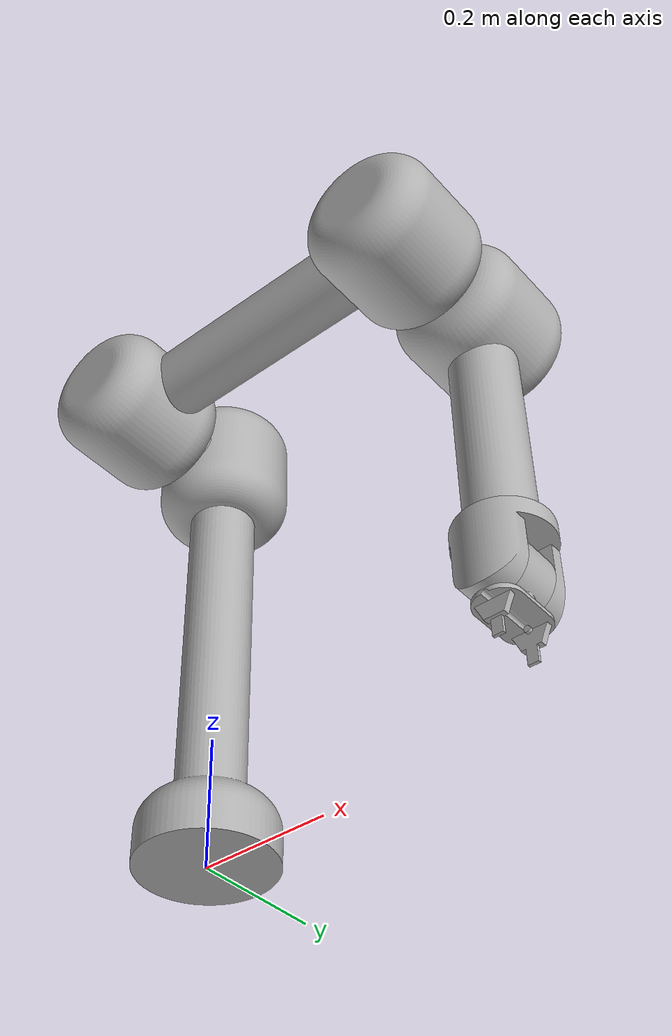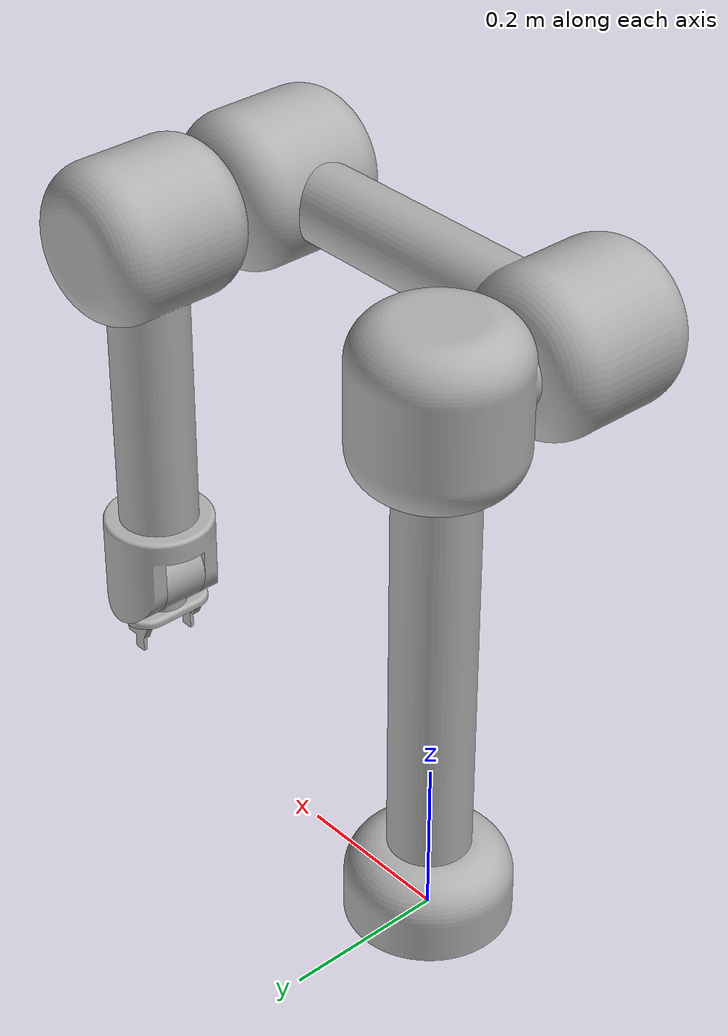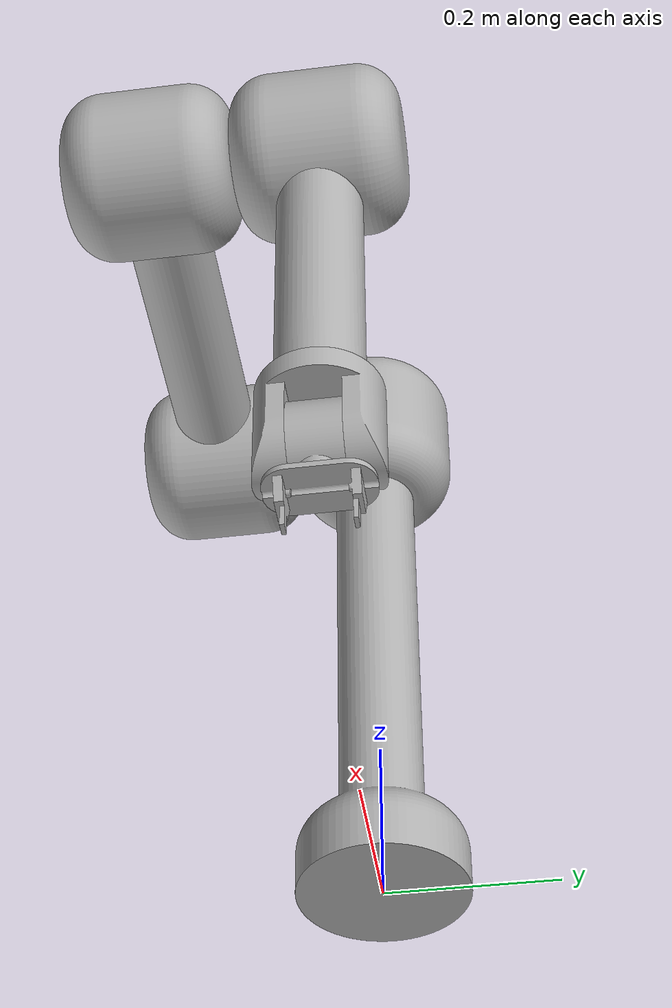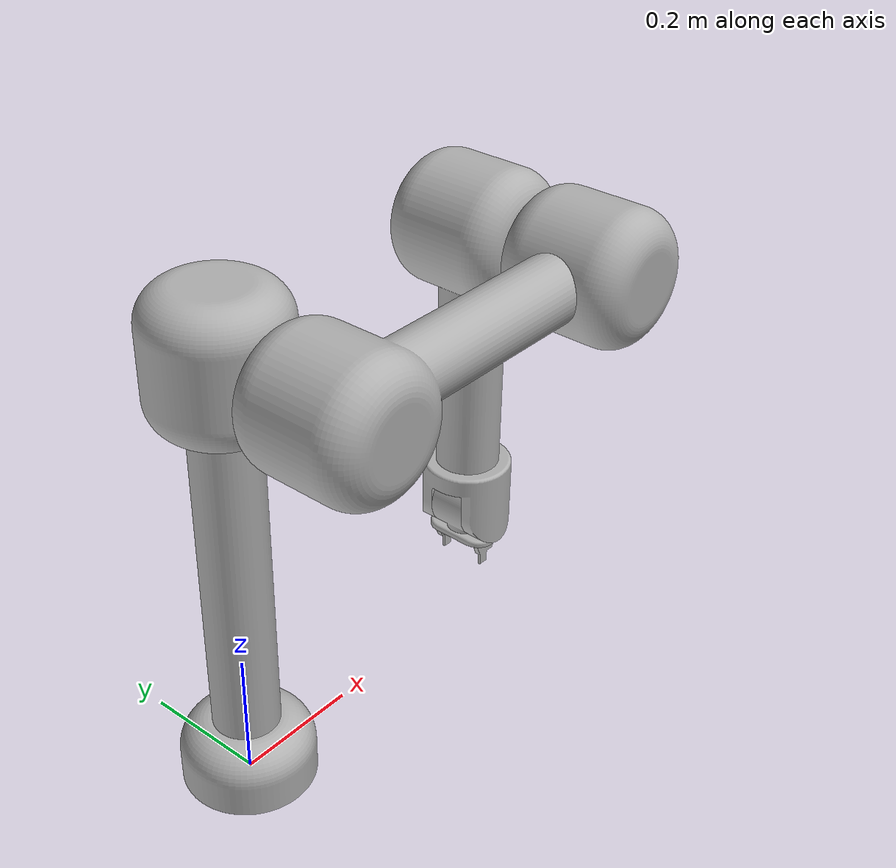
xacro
<?xml version="1.0" ?>
<robot name="6dof_mani" xmlns:xacro="http://www.ros.org/wiki/xacro">

  <xacro:include filename="/home/ydg/mani_ws/src/mani/urdf/materials.xacro" />
  <xacro:include filename="/home/ydg/mani_ws/src/mani/urdf/6dof_mani.gazebo" />
  <xacro:include filename="/home/ydg/mani_ws/src/mani/urdf/6dof_mani.trans" />

  <link name="world"/>

  <link name="base_link">
    <inertial>
      <origin xyz="2.149744881531404e-17 2.149744881531404e-17 0.22234748143971175" rpy="0 0 0"/>
      <mass value="53.13771672353255"/>
      <inertia ixx="1.926507" iyy="1.926507" izz="0.142694" ixy="0.0" iyz="0.0" ixz="0.0"/>
    </inertial>
    <visual>
      <origin xyz="0 0 0" rpy="0 0 0"/>
      <geometry>
        <mesh filename="file://$(find mani)/meshes/base_link.stl" scale="0.001 0.001 0.001"/>
      </geometry>
      <material name="silver"/>
    </visual>
    <collision>
      <origin xyz="0 0 0" rpy="0 0 0"/>
      <geometry>
        <mesh filename="file://$(find mani)/meshes/base_link.stl" scale="0.001 0.001 0.001"/>
      </geometry>
    </collision>
  </link>

  <joint name="fixed_joint" type="fixed">
    <parent link="world"/>
    <child link="base_link"/>
    <origin xyz="0 0 0" rpy="0 0 -1.570796"/>
  </joint>

  <link name="link_8_1">
    <inertial>
      <origin xyz="-0.039340998690695 7.58658880162244e-09 -0.05486038510225294" rpy="0 0 0"/>
      <mass value="0.10049075548979451"/>
      <inertia ixx="2.8e-05" iyy="1.6e-05" izz="1.3e-05" ixy="0.0" iyz="-0.0" ixz="0.0"/>
    </inertial>
    <visual>
      <origin xyz="-0.0 -0.5 -0.2" rpy="0 0 0"/>
      <geometry>
        <mesh filename="file://$(find mani)/meshes/link_8_1.stl" scale="0.001 0.001 0.001"/>
      </geometry>
      <material name="silver"/>
    </visual>
    <collision>
      <origin xyz="-0.0 -0.5 -0.2" rpy="0 0 0"/>
      <geometry>
        <mesh filename="file://$(find mani)/meshes/link_8_1.stl" scale="0.001 0.001 0.001"/>
      </geometry>
    </collision>
  </link>

  <link name="link_9_1">
    <inertial>
      <origin xyz="0.039340998774234935 -6.868324020636862e-09 -0.054860385776580256" rpy="0 0 0"/>
      <mass value="0.1004907509297747"/>
      <inertia ixx="2.8e-05" iyy="1.6e-05" izz="1.3e-05" ixy="0.0" iyz="-0.0" ixz="-0.0"/>
    </inertial>
    <visual>
      <origin xyz="-0.0 -0.5 -0.2" rpy="0 0 0"/>
      <geometry>
        <mesh filename="file://$(find mani)/meshes/link_9_1.stl" scale="0.001 0.001 0.001"/>
      </geometry>
      <material name="silver"/>
    </visual>
    <collision>
      <origin xyz="-0.0 -0.5 -0.2" rpy="0 0 0"/>
      <geometry>
        <mesh filename="file://$(find mani)/meshes/link_9_1.stl" scale="0.001 0.001 0.001"/>
      </geometry>
    </collision>
  </link>

  <link name="link_7_1">
    <inertial>
      <origin xyz="0.0 1.1102230246251565e-16 -0.00490145769266237" rpy="0 0 0"/>
      <mass value="0.5482219872439408"/>
      <inertia ixx="0.000212" iyy="0.000554" izz="0.000758" ixy="0.0" iyz="0.0" ixz="0.0"/>
    </inertial>
    <visual>
      <origin xyz="-0.0 -0.5 -0.17" rpy="0 0 0"/>
      <geometry>
        <mesh filename="file://$(find mani)/meshes/link_7_1.stl" scale="0.001 0.001 0.001"/>
      </geometry>
      <material name="silver"/>
    </visual>
    <collision>
      <origin xyz="-0.0 -0.5 -0.17" rpy="0 0 0"/>
      <geometry>
        <mesh filename="file://$(find mani)/meshes/link_7_1.stl" scale="0.001 0.001 0.001"/>
      </geometry>
    </collision>
  </link>

  <link name="link_6_1">
    <inertial>
      <origin xyz="-0.02999999968436338 -5.551115123125783e-17 -0.0006655542658631219" rpy="0 0 0"/>
      <mass value="3.7517142442249574"/>
      <inertia ixx="0.004765" iyy="0.003547" izz="0.003453" ixy="0.0" iyz="0.0" ixz="0.0"/>
    </inertial>
    <visual>
      <origin xyz="-0.03 -0.5 -0.22" rpy="0 0 0"/>
      <geometry>
        <mesh filename="file://$(find mani)/meshes/link_6_1.stl" scale="0.001 0.001 0.001"/>
      </geometry>
      <material name="silver"/>
    </visual>
    <collision>
      <origin xyz="-0.03 -0.5 -0.22" rpy="0 0 0"/>
      <geometry>
        <mesh filename="file://$(find mani)/meshes/link_6_1.stl" scale="0.001 0.001 0.001"/>
      </geometry>
    </collision>
  </link>

  <link name="link_5_1">
    <inertial>
      <origin xyz="-3.3978200457262537e-17 -5.551115123125783e-17 -0.04995217971199711" rpy="0 0 0"/>
      <mass value="8.404839941888653"/>
      <inertia ixx="0.018892" iyy="0.027299" izz="0.023197" ixy="-0.0" iyz="-0.0" ixz="-0.0"/>
    </inertial>
    <visual>
      <origin xyz="-0.0 -0.5 -0.3" rpy="0 0 0"/>
      <geometry>
        <mesh filename="file://$(find mani)/meshes/link_5_1.stl" scale="0.001 0.001 0.001"/>
      </geometry>
      <material name="silver"/>
    </visual>
    <collision>
      <origin xyz="-0.0 -0.5 -0.3" rpy="0 0 0"/>
      <geometry>
        <mesh filename="file://$(find mani)/meshes/link_5_1.stl" scale="0.001 0.001 0.001"/>
      </geometry>
    </collision>
  </link>

  <link name="link_4_1">
    <inertial>
      <origin xyz="-0.005393886723982707 -1.9101969062074176e-08 -0.0812452511717251" rpy="0 0 0"/>
      <mass value="57.15166854451474"/>
      <inertia ixx="1.131774" iyy="1.136453" izz="0.228916" ixy="-0.0" iyz="-0.0" ixz="0.025045"/>
    </inertial>
    <visual>
      <origin xyz="-0.0 -0.5 -0.7" rpy="0 0 0"/>
      <geometry>
        <mesh filename="file://$(find mani)/meshes/link_4_1.stl" scale="0.001 0.001 0.001"/>
      </geometry>
      <material name="silver"/>
    </visual>
    <collision>
      <origin xyz="-0.0 -0.5 -0.7" rpy="0 0 0"/>
      <geometry>
        <mesh filename="file://$(find mani)/meshes/link_4_1.stl" scale="0.001 0.001 0.001"/>
      </geometry>
    </collision>
  </link>

  <link name="link_3_1">
    <inertial>
      <origin xyz="-0.02063337713705643 0.006447937492402134 1.6172253536339554e-08" rpy="0 0 0"/>
      <mass value="44.82089050461812"/>
      <inertia ixx="0.191876" iyy="0.352786" izz="0.335839" ixy="-0.005963" iyz="0.0" ixz="-0.0"/>
    </inertial>
    <visual>
      <origin xyz="-0.2 -0.5 -0.7" rpy="0 0 0"/>
      <geometry>
        <mesh filename="file://$(find mani)/meshes/link_3_1.stl" scale="0.001 0.001 0.001"/>
      </geometry>
      <material name="silver"/>
    </visual>
    <collision>
      <origin xyz="-0.2 -0.5 -0.7" rpy="0 0 0"/>
      <geometry>
        <mesh filename="file://$(find mani)/meshes/link_3_1.stl" scale="0.001 0.001 0.001"/>
      </geometry>
    </collision>
  </link>

  <link name="link_2_1">
    <inertial>
      <origin xyz="0.004868630594462409 0.11715205013596279 1.8184465711001963e-08" rpy="0 0 0"/>
      <mass value="63.31704419351884"/>
      <inertia ixx="1.897499" iyy="0.236785" izz="1.902339" ixy="0.036114" iyz="-0.0" ixz="0.0"/>
    </inertial>
    <visual>
      <origin xyz="-0.2 0.0 -0.7" rpy="0 0 0"/>
      <geometry>
        <mesh filename="file://$(find mani)/meshes/link_2_1.stl" scale="0.001 0.001 0.001"/>
      </geometry>
      <material name="silver"/>
    </visual>
    <collision>
      <origin xyz="-0.2 0.0 -0.7" rpy="0 0 0"/>
      <geometry>
        <mesh filename="file://$(find mani)/meshes/link_2_1.stl" scale="0.001 0.001 0.001"/>
      </geometry>
    </collision>
  </link>

  <link name="link_1_1">
    <inertial>
      <origin xyz="0.01851625139495706 -1.3314793762482336e-08 0.09999999999999987" rpy="0 0 0"/>
      <mass value="50.98628790042472"/>
      <inertia ixx="0.23957" iyy="0.363708" izz="0.340669" ixy="0.0" iyz="-0.0" ixz="-0.0"/>
    </inertial>
    <visual>
      <origin xyz="-0.0 -0.0 -0.6" rpy="0 0 0"/>
      <geometry>
        <mesh filename="file://$(find mani)/meshes/link_1_1.stl" scale="0.001 0.001 0.001"/>
      </geometry>
      <material name="silver"/>
    </visual>
    <collision>
      <origin xyz="-0.0 -0.0 -0.6" rpy="0 0 0"/>
      <geometry>
        <mesh filename="file://$(find mani)/meshes/link_1_1.stl" scale="0.001 0.001 0.001"/>
      </geometry>
    </collision>
  </link>

  <joint name="Slider_1" type="prismatic">
    <origin xyz="0.0 0.0 0.03" rpy="0 0 0"/>
    <parent link="link_7_1"/>
    <child link="link_8_1"/>
    <axis xyz="1.0 0.0 0.0"/>
    <limit upper="0.025" lower="0.0" effort="100" velocity="100"/>
  </joint>

  <joint name="Slider_2" type="prismatic">
    <origin xyz="0.0 0.0 0.03" rpy="0 0 0"/>
    <parent link="link_7_1"/>
    <child link="link_9_1"/>
    <axis xyz="1.0 0.0 0.0"/>
    <limit upper="0.0" lower="-0.025" effort="100" velocity="100"/>
  </joint>

  <joint name="Revolute_6" type="revolute">
    <origin xyz="-0.03 0.0 -0.05" rpy="0 0 0"/>
    <parent link="link_6_1"/>
    <child link="link_7_1"/>
    <axis xyz="0.0 0.0 -1.0"/>
    <limit upper="3.141593" lower="-3.141593" effort="100" velocity="100"/>
  </joint>

  <joint name="Revolute_5" type="revolute">
    <origin xyz="0.03 0.0 -0.08" rpy="0 0 0"/>
    <parent link="link_5_1"/>
    <child link="link_6_1"/>
    <axis xyz="-1.0 0.0 0.0"/>
    <limit upper="1.570796" lower="-1.570796" effort="100" velocity="100"/>
  </joint>

  <joint name="Revolute_4" type="revolute">
    <origin xyz="0.0 0.0 -0.4" rpy="0 0 0"/>
    <parent link="link_4_1"/>
    <child link="link_5_1"/>
    <axis xyz="0.0 0.0 -1.0"/>
    <limit upper="3.141593" lower="-3.141593" effort="100" velocity="100"/>
  </joint>

  <joint name="Revolute_3" type="revolute">
    <origin xyz="-0.2 0.0 0.0" rpy="0 0 0"/>
    <parent link="link_3_1"/>
    <child link="link_4_1"/>
    <axis xyz="-1.0 0.0 0.0"/>
    <limit upper="1.570796" lower="-4.712389" effort="100" velocity="100"/>
  </joint>

  <joint name="Rigid_7" type="fixed">
    <origin xyz="0.0 0.5 0.0" rpy="0 0 0"/>
    <parent link="link_2_1"/>
    <child link="link_3_1"/>
  </joint>

  <joint name="Revolute_2" type="revolute">
    <origin xyz="0.2 -0.0 0.1" rpy="0 0 0"/>
    <parent link="link_1_1"/>
    <child link="link_2_1"/>
    <axis xyz="1.0 0.0 0.0"/>
    <limit upper="3.141593" lower="-3.141593" effort="100" velocity="100"/>
  </joint>

  <joint name="Revolute_1" type="revolute">
    <origin xyz="0.0 0.0 0.6" rpy="0 0 0"/>
    <parent link="base_link"/>
    <child link="link_1_1"/>
    <axis xyz="0.0 0.0 1.0"/>
    <limit upper="3.141593" lower="-3.141593" effort="100" velocity="100"/>
  </joint>

  <ros2_control name="mani_ros2_control" type="system">
    <hardware>
      <plugin>gazebo_ros2_control/GazeboSystem</plugin>
    </hardware>
    <joint name="Revolute_1">
      <command_interface name="position"/>
      <state_interface name="position"/>
      <state_interface name="velocity"/>
      <initial_position>0.0</initial_position>
    </joint>
    <joint name="Revolute_2">
      <command_interface name="position"/>
      <state_interface name="position"/>
      <state_interface name="velocity"/>
      <initial_position>0.0</initial_position>
    </joint>
    <joint name="Revolute_3">
      <command_interface name="position"/>
      <state_interface name="position"/>
      <state_interface name="velocity"/>
      <initial_position>-1.57</initial_position>
    </joint>
    <joint name="Revolute_4">
      <command_interface name="position"/>
      <state_interface name="position"/>
      <state_interface name="velocity"/>
      <initial_position>0.0</initial_position>
    </joint>
    <joint name="Revolute_5">
      <command_interface name="position"/>
      <state_interface name="position"/>
      <state_interface name="velocity"/>
      <initial_position>0.0</initial_position>
    </joint>
    <joint name="Revolute_6">
      <command_interface name="position"/>
      <state_interface name="position"/>
      <state_interface name="velocity"/>
      <initial_position>0.0</initial_position>
    </joint>
    <joint name="Slider_1">
      <command_interface name="position"/>
      <state_interface name="position"/>
      <state_interface name="velocity"/>
      <initial_position>0.0</initial_position>
    </joint>
    <joint name="Slider_2">
      <command_interface name="position"/>
      <state_interface name="position"/>
      <state_interface name="velocity"/>
      <initial_position>0.0</initial_position>
    </joint>
  </ros2_control>
</robot>

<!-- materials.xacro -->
<robot name="6dof_mani" xmlns:xacro="http://www.ros.org/wiki/xacro" >

<material name="silver">
  <color rgba="0.700 0.700 0.700 1.000"/>
</material>

<material name="white">
  <color rgba="1.00 1.00 1.00 1.000"/>
</material>

</robot>

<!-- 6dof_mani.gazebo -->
<robot name="6dof_mani" xmlns:xacro="http://www.ros.org/wiki/xacro" >

<xacro:property name="body_color" value="Gazebo/Silver" />

<gazebo>
  <plugin filename="libgazebo_ros2_control.so" name="gazebo_ros2_control">
    <robotNamespace>/</robotNamespace>
    <parameters>/home/ydg/mani_ws/src/mani/config/ros2_controllers.yaml</parameters>
  </plugin>
</gazebo>

<gazebo reference="base_link">
  <material>${body_color}</material>
  <mu1>0.2</mu1>
  <mu2>0.2</mu2>
  <self_collide>true</self_collide>
  <gravity>0</gravity>
</gazebo>

<gazebo reference="link_8_1">
  <material>${body_color}</material>
  <mu1>0.2</mu1>
  <mu2>0.2</mu2>
  <self_collide>true</self_collide>
</gazebo>

<gazebo reference="link_9_1">
  <material>${body_color}</material>
  <mu1>0.2</mu1>
  <mu2>0.2</mu2>
  <self_collide>true</self_collide>
</gazebo>

<gazebo reference="link_7_1">
  <material>${body_color}</material>
  <mu1>0.2</mu1>
  <mu2>0.2</mu2>
  <self_collide>true</self_collide>
</gazebo>

<gazebo reference="link_6_1">
  <material>${body_color}</material>
  <mu1>0.2</mu1>
  <mu2>0.2</mu2>
  <self_collide>true</self_collide>
</gazebo>

<gazebo reference="link_5_1">
  <material>${body_color}</material>
  <mu1>0.2</mu1>
  <mu2>0.2</mu2>
  <self_collide>true</self_collide>
</gazebo>

<gazebo reference="link_4_1">
  <material>${body_color}</material>
  <mu1>0.2</mu1>
  <mu2>0.2</mu2>
  <self_collide>true</self_collide>
</gazebo>

<gazebo reference="link_3_1">
  <material>${body_color}</material>
  <mu1>0.2</mu1>
  <mu2>0.2</mu2>
  <self_collide>true</self_collide>
</gazebo>

<gazebo reference="link_2_1">
  <material>${body_color}</material>
  <mu1>0.2</mu1>
  <mu2>0.2</mu2>
  <self_collide>true</self_collide>
</gazebo>

<gazebo reference="link_1_1">
  <material>${body_color}</material>
  <mu1>0.2</mu1>
  <mu2>0.2</mu2>
  <self_collide>true</self_collide>
</gazebo>

</robot>
